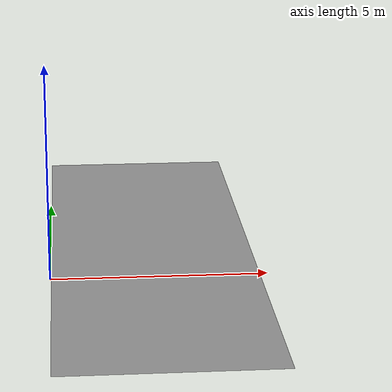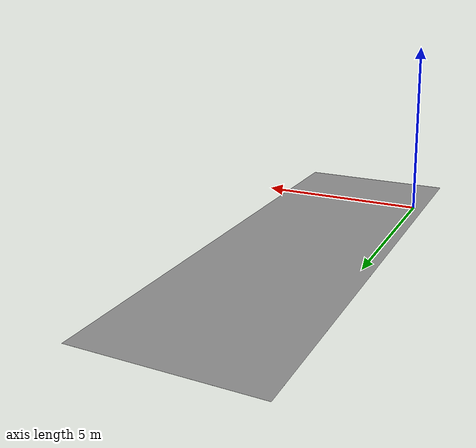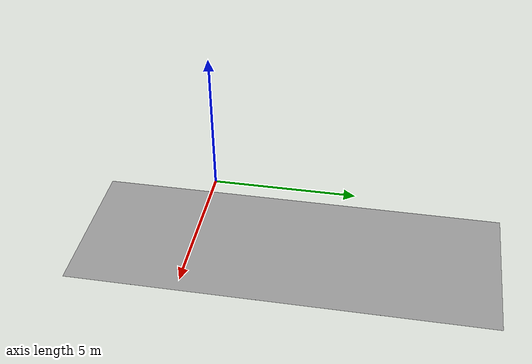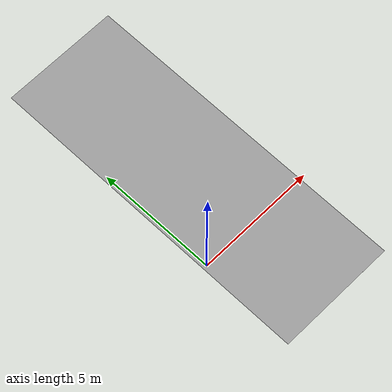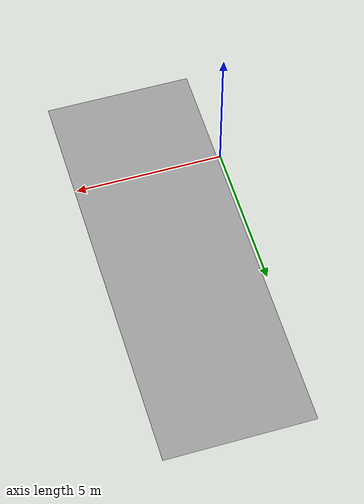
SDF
<?xml version='1.0'?>
<sdf version='1.7'>
  <model name='ground'>
    <link name='link'>
      <inertial>
        <mass>1</mass>
        <inertia>
          <ixx>0.166667</ixx>
          <ixy>0</ixy>
          <ixz>0</ixz>
          <iyy>0.166667</iyy>
          <iyz>0</iyz>
          <izz>0.166667</izz>
        </inertia>
        <pose>0 0 0 0 -0 0</pose>
      </inertial>
      <self_collide>0</self_collide>
      <enable_wind>0</enable_wind>
      <kinematic>1</kinematic>
      <pose>2.50107 3.07159 -0.5 0 -0 0</pose>
      <gravity>1</gravity>
      <visual name='visual'>
        <geometry>
          <box>
            <size>5 14 0.0001</size>
          </box>
        </geometry>
        <material>
          <script>
            <name>Gazebo/Grey</name>
            <uri>file://media/materials/scripts/gazebo.material</uri>
          </script>
          <shader type='pixel'>
            <normal_map>__default__</normal_map>
          </shader>
          <ambient>0 0.05 0 1</ambient>
          <diffuse>0 0.05 0 1</diffuse>
          <specular>0.01 0.01 0.01 1</specular>
          <emissive>0 0 0 1</emissive>
        </material>
        <pose>0 0 0 0 -0 0</pose>
        <transparency>0</transparency>
        <cast_shadows>1</cast_shadows>
      </visual>
    </link>
    <static>0</static>
    <allow_auto_disable>1</allow_auto_disable>
  </model>
</sdf>
